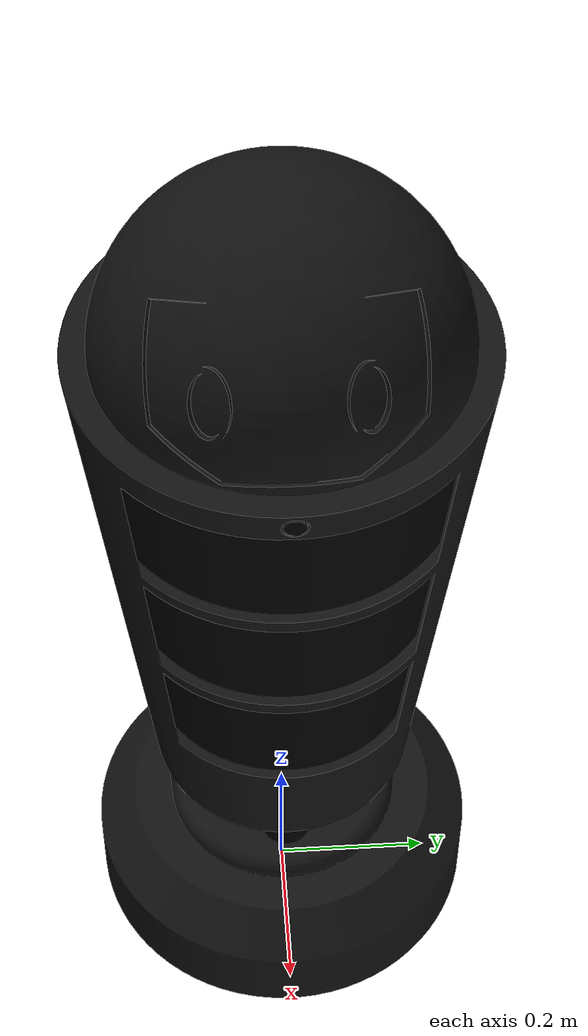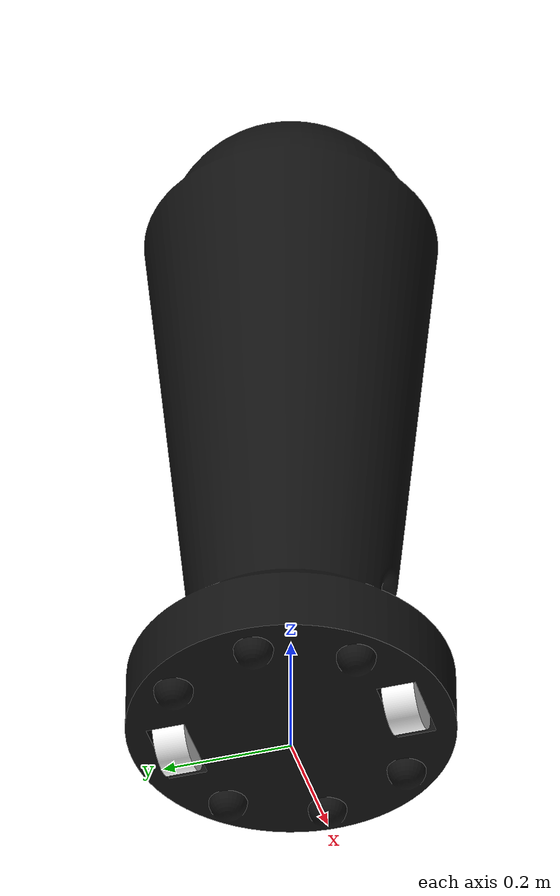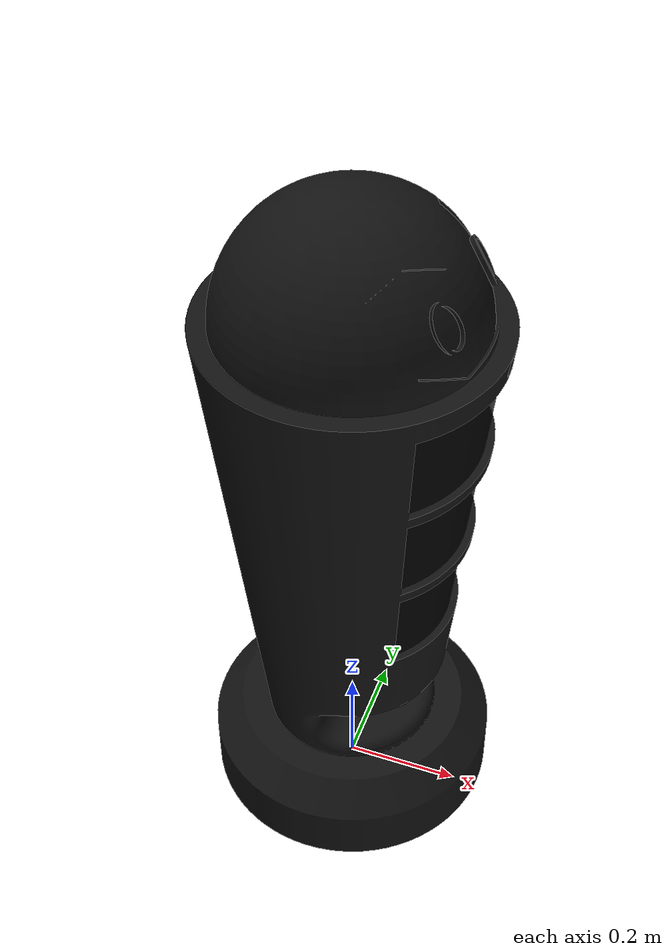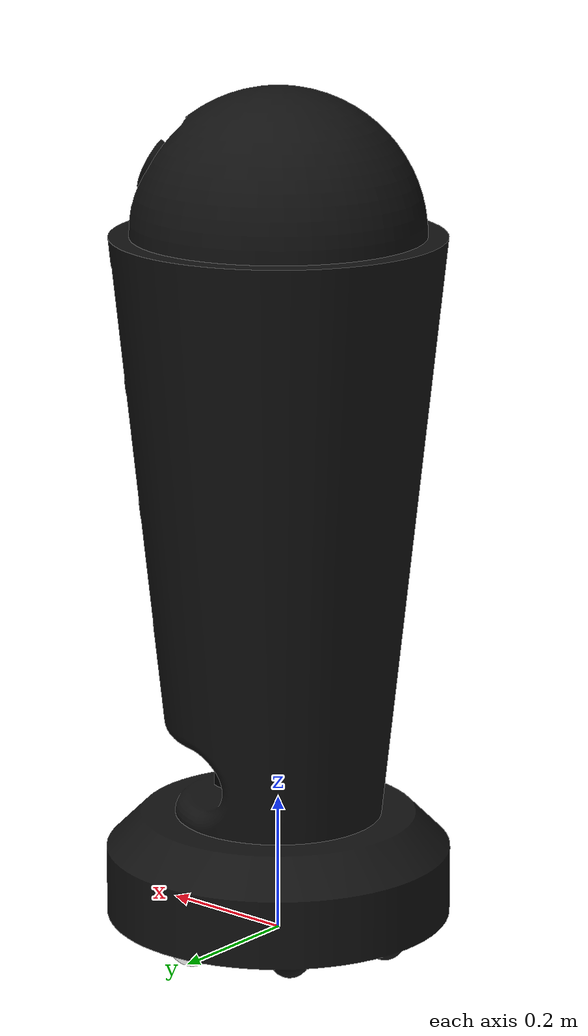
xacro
<?xml version="1.0" ?>
<robot name="butler_bot" xmlns:xacro="http://www.ros.org/wiki/xacro">

<xacro:include filename="$(find butler_bot)/urdf/materials.xacro" />
<xacro:include filename="$(find butler_bot)/urdf/butler_bot.trans" />
<xacro:include filename="$(find butler_bot)/urdf/butler_bot.gazebo" />
<xacro:include filename="$(find butler_bot)/urdf/gazebo_control.xacro" />

<link name="base_footprint"/>

<link name="base_link">
  <inertial>
    <origin xyz="0 0 0.2" rpy="0 0 0"/>
    <mass value="50.0"/>
    <inertia ixx="10.0" iyy="10.0" izz="10.0" ixy="0.0" iyz="0.0" ixz="0.0"/>
  </inertial>
  <visual>
    <origin xyz="0 0 0" rpy="0 0 0"/>
    <geometry>
      <mesh filename="file://$(find butler_bot)/meshes/base_link.stl" scale="0.001 0.001 0.001"/>
    </geometry>
    <material name="black_trans"/>
  </visual>
  <collision>
    <origin xyz="0 0 0.4" rpy="0 0 0"/>
    <geometry>
      <box size="0.4 0.4 0.8"/>
    </geometry>
  </collision>
</link>

<link name="right_wheel_1">
  <inertial>
    <origin xyz="0 0 0" rpy="0 0 0"/>
    <mass value="2.0"/>
    <inertia ixx="0.02" iyy="0.04" izz="0.02" ixy="0.0" iyz="0.0" ixz="0.0"/>
  </inertial>
  <visual>
    <origin xyz="-0.0 0.16 -0.05" rpy="0 0 0"/>
    <geometry>
      <mesh filename="file://$(find butler_bot)/meshes/right_wheel_1.stl" scale="0.001 0.001 0.001"/>
    </geometry>
    <material name="white"/>
  </visual>
  <collision>
    <origin xyz="0 0 0" rpy="1.5707 0 0"/>
    <geometry>
      <cylinder length="0.04" radius="0.05"/>
    </geometry>
  </collision>
</link>

<link name="left_wheel_1">
  <inertial>
    <origin xyz="0 0 0" rpy="0 0 0"/>
    <mass value="2.0"/>
    <inertia ixx="0.02" iyy="0.04" izz="0.02" ixy="0.0" iyz="0.0" ixz="0.0"/>
  </inertial>
  <visual>
    <origin xyz="-0.0 -0.16 -0.05" rpy="0 0 0"/>
    <geometry>
      <mesh filename="file://$(find butler_bot)/meshes/left_wheel_1.stl" scale="0.001 0.001 0.001"/>
    </geometry>
    <material name="white"/>
  </visual>
  <collision>
    <origin xyz="0 0 0" rpy="1.5707 0 0"/>
    <geometry>
      <cylinder length="0.04" radius="0.05"/>
    </geometry>
  </collision>
</link>

<link name="imu_1">
  <inertial>
    <origin xyz="-1.3043412765197046e-18 -1.3043412765197046e-18 0.007500000000000007" rpy="0 0 0"/>
    <mass value="0.026726903150874313"/>
    <inertia ixx="1e-06" iyy="1e-06" izz="1e-06" ixy="0.0" iyz="-0.0" ixz="-0.0"/>
  </inertial>
  <visual>
    <origin xyz="-0.0 -0.0 -0.182" rpy="0 0 0"/>
    <geometry>
      <mesh filename="file://$(find butler_bot)/meshes/imu_1.stl" scale="0.001 0.001 0.001"/>
    </geometry>
    <material name="black"/>
  </visual>
  <collision>
    <origin xyz="-0.0 -0.0 -0.182" rpy="0 0 0"/>
    <geometry>
      <mesh filename="file://$(find butler_bot)/meshes/imu_1.stl" scale="0.001 0.001 0.001"/>
    </geometry>
  </collision>
</link>

<link name="camera_1">
  <inertial>
    <origin xyz="0.004972760168931917 5.016782464053831e-07 -0.0005223907713478582" rpy="0 0 0"/>
    <mass value="0.03853359739168721"/>
    <inertia ixx="3e-06" iyy="2e-06" izz="2e-06" ixy="0.0" iyz="-0.0" ixz="-0.0"/>
  </inertial>
  <visual>
    <origin xyz="-0.227311 0.000231 -1.011235" rpy="0 0 0"/>
    <geometry>
      <mesh filename="file://$(find butler_bot)/meshes/camera_1.stl" scale="0.001 0.001 0.001"/>
    </geometry>
    <material name="black"/>
  </visual>
  <collision>
    <origin xyz="-0.227311 0.000231 -1.011235" rpy="0 0 0"/>
    <geometry>
      <mesh filename="file://$(find butler_bot)/meshes/camera_1.stl" scale="0.001 0.001 0.001"/>
    </geometry>
  </collision>
</link>

<link name="slide_i_1">
  <inertial>
    <origin xyz="0.10265120192030891 -0.087227862918116 0.08245393500730491" rpy="0 0 0"/>
    <mass value="6.671856825002257"/>
    <inertia ixx="0.119339" iyy="0.085406" izz="0.175325" ixy="-0.057161" iyz="0.000637" ixz="-0.000755"/>
  </inertial>
  <visual>
    <origin xyz="-0.0 -0.0 -0.827295" rpy="0 0 0"/>
    <geometry>
      <mesh filename="file://$(find butler_bot)/meshes/slide_i_1.stl" scale="0.001 0.001 0.001"/>
    </geometry>
    <material name="black_slide"/>
  </visual>
  <collision>
    <origin xyz="-0.0 -0.0 -0.827295" rpy="0 0 0"/>
    <geometry>
      <mesh filename="file://$(find butler_bot)/meshes/slide_i_1.stl" scale="0.001 0.001 0.001"/>
    </geometry>
  </collision>
</link>

<link name="slide_ii_1">
  <inertial>
    <origin xyz="0.09332131347575981 -0.07935430290975601 0.08256335747283794" rpy="0 0 0"/>
    <mass value="6.066164454956698"/>
    <inertia ixx="0.092054" iyy="0.06654" izz="0.131847" ixy="-0.042976" iyz="0.000579" ixz="-0.000687"/>
  </inertial>
  <visual>
    <origin xyz="-0.0 -0.0 -0.645449" rpy="0 0 0"/>
    <geometry>
      <mesh filename="file://$(find butler_bot)/meshes/slide_ii_1.stl" scale="0.001 0.001 0.001"/>
    </geometry>
    <material name="black_slide"/>
  </visual>
  <collision>
    <origin xyz="-0.0 -0.0 -0.645449" rpy="0 0 0"/>
    <geometry>
      <mesh filename="file://$(find butler_bot)/meshes/slide_ii_1.stl" scale="0.001 0.001 0.001"/>
    </geometry>
  </collision>
</link>

<link name="slide_iii_1">
  <inertial>
    <origin xyz="0.08399290864411624 -0.07148207698021895 0.08269817543479258" rpy="0 0 0"/>
    <mass value="5.4604720849111885"/>
    <inertia ixx="0.069462" iyy="0.050843" izz="0.096232" ixy="-0.031357" iyz="0.000521" ixz="-0.000618"/>
  </inertial>
  <visual>
    <origin xyz="-0.0 -0.0 -0.463602" rpy="0 0 0"/>
    <geometry>
      <mesh filename="file://$(find butler_bot)/meshes/slide_iii_1.stl" scale="0.001 0.001 0.001"/>
    </geometry>
    <material name="black_slide"/>
  </visual>
  <collision>
    <origin xyz="-0.0 -0.0 -0.463602" rpy="0 0 0"/>
    <geometry>
      <mesh filename="file://$(find butler_bot)/meshes/slide_iii_1.stl" scale="0.001 0.001 0.001"/>
    </geometry>
  </collision>
</link>

<link name="lidar_1">
  <inertial>
    <origin xyz="-1.1847664506403621e-07 -7.555046224993353e-14 0.03341614407962537" rpy="0 0 0"/>
    <mass value="1.7392760875032494"/>
    <inertia ixx="0.001103" iyy="0.001103" izz="0.000906" ixy="-0.0" iyz="0.0" ixz="0.0"/>
  </inertial>
  <visual>
    <origin xyz="-0.081264 0.0 -0.205" rpy="0 0 0"/>
    <geometry>
      <mesh filename="file://$(find butler_bot)/meshes/lidar_1.stl" scale="0.001 0.001 0.001"/>
    </geometry>
    <material name="black"/>
  </visual>
  <collision>
    <origin xyz="-0.081264 0.0 -0.205" rpy="0 0 0"/>
    <geometry>
      <mesh filename="file://$(find butler_bot)/meshes/lidar_1.stl" scale="0.001 0.001 0.001"/>
    </geometry>
  </collision>
</link>

<joint name="base_joint" type="fixed">
  <origin xyz="0.0 0.0 0.0" rpy="0 0 0"/>
  <parent link="base_footprint"/>
  <child link="base_link"/>
</joint>

<joint name="right_wheel_joint" type="continuous">
  <origin xyz="0.0 -0.16 0.05" rpy="0 0 0"/>
  <parent link="base_link"/>
  <child link="right_wheel_1"/>
  <axis xyz="0.0 1.0 0.0"/>
</joint>

<joint name="left_wheel_joint" type="continuous">
  <origin xyz="0.0 0.16 0.05" rpy="0 0 0"/>
  <parent link="base_link"/>
  <child link="left_wheel_1"/>
  <axis xyz="0.0 1.0 0.0"/>
</joint>

<joint name="imu_joint" type="fixed">
  <origin xyz="0.0 0.0 0.182" rpy="0 0 0"/>
  <parent link="base_link"/>
  <child link="imu_1"/>
</joint>

<joint name="camera_joint" type="fixed">
  <origin xyz="0.227311 -0.000231 1.011235" rpy="0 0 0"/>
  <parent link="base_link"/>
  <child link="camera_1"/>
</joint>

<joint name="slide_i_joint" type="revolute">
  <origin xyz="0.0 0.0 0.827295" rpy="0 0 0"/>
  <parent link="base_link"/>
  <child link="slide_i_1"/>
  <axis xyz="0.0 0.0 -1.0"/>
  <limit upper="1.919862" lower="0.0" effort="100" velocity="100"/>
</joint>

<joint name="slide_ii_joint" type="revolute">
  <origin xyz="0.0 0.0 0.645449" rpy="0 0 0"/>
  <parent link="base_link"/>
  <child link="slide_ii_1"/>
  <axis xyz="0.0 0.0 -1.0"/>
  <limit upper="1.919862" lower="0.0" effort="100" velocity="100"/>
</joint>

<joint name="slide_iii_joint" type="revolute">
  <origin xyz="0.0 0.0 0.463602" rpy="0 0 0"/>
  <parent link="base_link"/>
  <child link="slide_iii_1"/>
  <axis xyz="0.0 0.0 -1.0"/>
  <limit upper="1.919862" lower="0.0" effort="100" velocity="100"/>
</joint>

<joint name="lidar_joint" type="fixed">
  <origin xyz="0.081264 0.0 0.205" rpy="0 0 0"/>
  <parent link="base_link"/>
  <child link="lidar_1"/>
</joint>

</robot>

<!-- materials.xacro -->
<robot name="buttler" xmlns:xacro="http://www.ros.org/wiki/xacro" >

<material name="black_trans">
  <color rgba="0.070 0.070 0.070 0.900"/>
</material>

<material name="white">
  <color rgba="1.000 1.000 1.000 1.000"/>
</material>
<material name="black_slide">
  <color rgba="0.030 0.030 0.030 0.800"/>
</material>

<material name="black">
  <color rgba="0.000 0.000 0.000 1.000"/>
</material>

</robot>

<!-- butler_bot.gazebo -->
<robot name="butler_bot" xmlns:xacro="http://www.ros.org/wiki/xacro" >

<xacro:property name="body_color" value="Gazebo/Silver" />

<gazebo reference="base_link">
  <material>${body_color}</material>
  <mu1>0.0001</mu1>
  <mu2>0.0001</mu2>
  <self_collide>true</self_collide>
  <gravity>true</gravity>
</gazebo>

<gazebo reference="right_wheel_1">
  <material>${body_color}</material>
  <mu1>10.0</mu1>
  <mu2>10.0</mu2>
  <self_collide>true</self_collide>
  <kp>1000000.0</kp>
  <kd>10.0</kd>
  <minDepth>0.001</minDepth>
  <maxVel>0.1</maxVel>
  <fdir1>1 0 0</fdir1>
</gazebo>

<gazebo reference="left_wheel_1">
  <material>${body_color}</material>
  <mu1>10.0</mu1>
  <mu2>10.0</mu2>
  <self_collide>true</self_collide>
  <kp>1000000.0</kp>
  <kd>10.0</kd>
  <minDepth>0.001</minDepth>
  <maxVel>0.1</maxVel>
  <fdir1>1 0 0</fdir1>
</gazebo>

<gazebo reference="imu_1">
  <material>${body_color}</material>
  <mu1>0.2</mu1>
  <mu2>0.2</mu2>
  <self_collide>true</self_collide>
</gazebo>

<gazebo reference="camera_1">
  <material>${body_color}</material>
  <mu1>0.2</mu1>
  <mu2>0.2</mu2>
  <self_collide>true</self_collide>
</gazebo>

<gazebo reference="slide_i_1">
  <material>${body_color}</material>
  <mu1>0.2</mu1>
  <mu2>0.2</mu2>
  <self_collide>true</self_collide>
</gazebo>

<gazebo reference="slide_ii_1">
  <material>${body_color}</material>
  <mu1>0.2</mu1>
  <mu2>0.2</mu2>
  <self_collide>true</self_collide>
</gazebo>

<gazebo reference="slide_iii_1">
  <material>${body_color}</material>
  <mu1>0.2</mu1>
  <mu2>0.2</mu2>
  <self_collide>true</self_collide>
</gazebo>

<gazebo reference="lidar_1">
  <material>${body_color}</material>
  <mu1>0.2</mu1>
  <mu2>0.2</mu2>
  <self_collide>true</self_collide>
</gazebo>

</robot>
